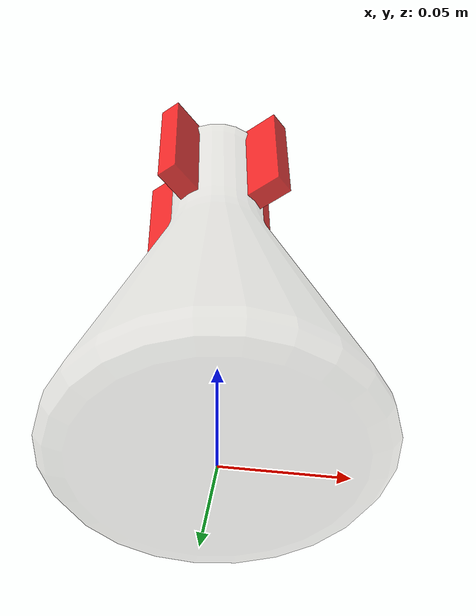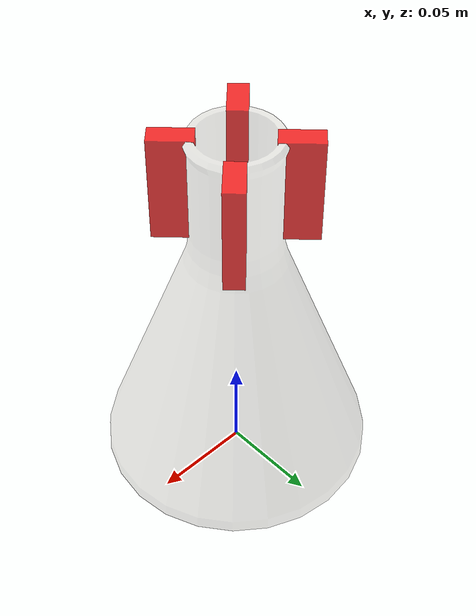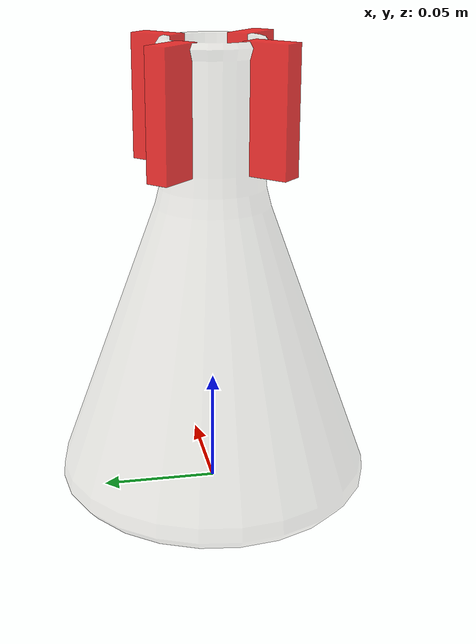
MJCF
<?xml version="1.0" ?>
<!-- @bbox dx=0.137 dy=0.137 dz=0.200 -->
<mujoco model="flask">
  <asset>
    <texture type="2d" name="lab_erlenmeyer_a" file="lab_erlenmeyer_a.png"/>
    <material name="lab_erlenmeyer_a" texture="lab_erlenmeyer_a" specular="0.4000000000000001" shininess="0.001" rgba="1 1 1 0.3"/>
    <mesh file="flask.obj" scale="0.013126563322826317 0.013126563322826317 0.013126563322826317"/>
      <material name="CaSO4" rgba="1 1 1 0.7"/>
    <material name="CuCl2" rgba="0.141 1.0 0.174 0.4"/>
    <material name="CuSO4" rgba="0 0.45 1 0.4"/>
    <material name="FeCl3" rgba="0.6475 0.5686 0.023 0.4"/>
    <material name="KMnO4" rgba="0.5 0 0.5 0.4"/>
    <material name="I2" rgba="0.3 0.13 0.0 0.4"/>
    <material name="K2CrO4" rgba="0.57 0.12 0.013 0.4"/>
    <material name="NaCl" rgba="1 1 1 0.3"/>
</asset>
  <worldbody>
    <body name="flask">
      <inertial pos="0 0 0.100000" mass="0.02" diaginertia="0.0008 0.0008 0.0005"/>
      <geom material="lab_erlenmeyer_a" mesh="flask" class="visual"/>
      <geom type="mesh" mesh="flask" class="collision"/>
      <site class="grasppoint" pos="0.0000 0.0000 0.1820" group="4"/>
      <!-- Visual plates (contype=0 conaffinity=0 → rgba renders fully). Rotated 45° around Z. -->
      <geom name="grip_plate_x_v_1" type="box" size="0.0105 0.005 0.027" pos="0.020 0.020 0.173" quat="0.9238795 0 0 0.3826834" contype="0" conaffinity="0" group="2" rgba="1 0 0 0.8"/>
      <geom name="grip_plate_y_v_1" type="box" size="0.005 0.0105 0.027" pos="-0.020 0.020 0.173" quat="0.9238795 0 0 0.3826834" contype="0" conaffinity="0" group="2" rgba="1 0 0 0.8"/>
      <geom name="grip_plate_x_v_2" type="box" size="0.0105 0.005 0.027" pos="0.020 -0.020 0.173" quat="-0.9238795 0 0 0.3826834" contype="0" conaffinity="0" group="2" rgba="1 0 0 0.8"/>
      <geom name="grip_plate_y_v_2" type="box" size="0.005 0.0105 0.027" pos="-0.020 -0.020 0.173" quat="-0.9238795 0 0 0.3826834" contype="0" conaffinity="0" group="2" rgba="1 0 0 0.8"/>
      <geom name="grip_plate_x" type="box" size="0.0105 0.005 0.027" pos="0.020 0.020 0.173" quat="0.9238795 0 0 0.3826834" contype="2" conaffinity="2" group="3" condim="6" friction="4 4 0.1" density="50" solref="0.001 1"/>
      <geom name="grip_plate_y" type="box" size="0.005 0.0105 0.027" pos="-0.020 0.020 0.173" quat="0.9238795 0 0 0.3826834" contype="2" conaffinity="2" group="3" condim="6" friction="4 4 0.1" density="50" solref="0.001 1"/>
      <geom name="grip_plate_x2" type="box" size="0.0105 0.005 0.027" pos="0.020 -0.020 0.173" quat="-0.9238795 0 0 0.3826834" contype="2" conaffinity="2" group="3" condim="6" friction="4 4 0.1" density="50" solref="0.001 1"/>
      <geom name="grip_plate_y2" type="box" size="0.005 0.0105 0.027" pos="-0.020 -0.020 0.173" quat="-0.9238795 0 0 0.3826834" contype="2" conaffinity="2" group="3" condim="6" friction="4 4 0.1" density="50" solref="0.001 1"/>
      <geom name="solution" type="cylinder" size="0.0569 0.0130" pos="0 0 0.0180" material="CaSO4" class="visual"/>
      <site name="top_site" pos="0 0 0.2000" size="0.01" rgba="1 0 0 0"/>
      <site name="bottom_site" pos="0 0 0.000000" size="0.01" rgba="0 1 0 0"/>
      <site class="placepoint" name="placepoint" pos="0 0 0.2000" group="2"/>
      <!-- bound_sites (group=3): 容器 AABB 8 角，用于 contain() / 安全边界 -->
      <site class="boundpoint" name="bnd_p0"   pos="-0.0685 -0.0685 0.0"   rgba="0 0 0 0" group="3"/>
      <site class="boundpoint" name="bnd_px"   pos=" 0.0685 -0.0685 0.0"   rgba="0 0 0 0" group="3"/>
      <site class="boundpoint" name="bnd_py"   pos="-0.0685  0.0685 0.0"   rgba="0 0 0 0" group="3"/>
      <site class="boundpoint" name="bnd_pxy"  pos=" 0.0685  0.0685 0.0"   rgba="0 0 0 0" group="3"/>
      <site class="boundpoint" name="bnd_pz"   pos="-0.0685 -0.0685 0.200" rgba="0 0 0 0" group="3"/>
      <site class="boundpoint" name="bnd_pxz"  pos=" 0.0685 -0.0685 0.200" rgba="0 0 0 0" group="3"/>
      <site class="boundpoint" name="bnd_pyz"  pos="-0.0685  0.0685 0.200" rgba="0 0 0 0" group="3"/>
      <site class="boundpoint" name="bnd_pxyz" pos=" 0.0685  0.0685 0.200" rgba="0 0 0 0" group="3"/>
</body>
  </worldbody>
  <compiler boundmass="0.015" boundinertia="1e-05" angle="radian"/>
  <default>
    <default class="visual">
      <geom group="2" type="mesh" contype="0" conaffinity="0" density="50"/>
    </default>
    <default class="collision">
      <geom group="3" type="mesh" density="50" friction="1 1 0.001" solimp="0.998 0.998 0.001" solref="0.001 2"/>
    </default>
    <default class="grasppoint">
      <site type="sphere" size="0.005" group="4" rgba="0 0 1 1"/>
    </default>
    <default class="boundpoint">
      <site type="sphere" size="0.01" group="3" rgba="1 0 0 1"/>
    </default>
    <default class="placepoint">
      <site type="sphere" size="0.01" group="2" rgba="0 0 1 0"/>
    </default>
  </default>
</mujoco>
